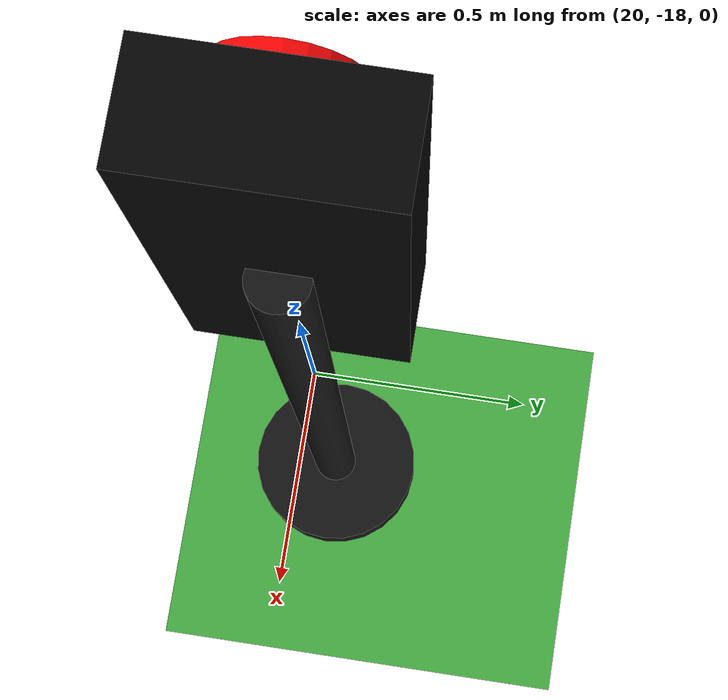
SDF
<sdf version="1.10">
 <world name="city_second">
  <model name="ground_plane">
   <static>true</static>
   <link name="link">
    <collision name="collision">
     <geometry><plane><normal>0 0 1</normal><size>300 300</size></plane></geometry>
    </collision>
    <visual name="visual">
     <geometry><plane><normal>0 0 1</normal><size>300 300</size></plane></geometry>
     <material>
      <ambient>0.280000001 0.689999998 0.25999999 1</ambient>
      <diffuse>0.280000001 0.689999998 0.25999999 1</diffuse>
      <specular>0.0299999993 0.0299999993 0.0299999993 1</specular>
     </material>
    </visual>
    <inertial>
     <mass>1</mass>
     <inertia><ixx>1</ixx><ixy>0</ixy><ixz>0</ixz><iyy>1</iyy><iyz>0</iyz><izz>1</izz></inertia>
    </inertial>
   </link>
  </model>
  <model name="simple_traffic_light_red_west_3">
   <static>true</static>
   <pose>20.210819927549061 -17.910705115010835 -6.9388939039072284e-18 0 0 1.5707999672671704</pose>
   <link name="base">
    <pose>0 0 0.040000000000000001 0 0 0</pose>
    <collision name="collision">
     <geometry>
      <cylinder><radius>0.17999999999999999</radius><length>0.080000000000000002</length></cylinder>
     </geometry>
    </collision>
    <visual name="visual">
     <geometry>
      <cylinder><radius>0.17999999999999999</radius><length>0.080000000000000002</length></cylinder>
     </geometry>
     <material>
      <ambient>0.0799999982 0.0799999982 0.0799999982 1</ambient>
      <diffuse>0.0799999982 0.0799999982 0.0799999982 1</diffuse>
      <specular>0.150000006 0.150000006 0.150000006 1</specular>
      <emissive>0 0 0 1</emissive>
     </material>
    </visual>
    <inertial>
     <mass>1</mass>
     <inertia><ixx>1</ixx><ixy>0</ixy><ixz>0</ixz><iyy>1</iyy><iyz>0</iyz><izz>1</izz></inertia>
    </inertial>
   </link>
   <link name="pole">
    <pose>0 0 0.80000000000000004 0 0 0</pose>
    <collision name="collision">
     <geometry>
      <cylinder><radius>0.044999999999999998</radius><length>1.6000000000000001</length></cylinder>
     </geometry>
    </collision>
    <visual name="visual">
     <geometry>
      <cylinder><radius>0.044999999999999998</radius><length>1.6000000000000001</length></cylinder>
     </geometry>
     <material>
      <ambient>0.0799999982 0.0799999982 0.0799999982 1</ambient>
      <diffuse>0.0799999982 0.0799999982 0.0799999982 1</diffuse>
      <specular>0.150000006 0.150000006 0.150000006 1</specular>
      <emissive>0 0 0 1</emissive>
     </material>
    </visual>
    <inertial>
     <mass>1</mass>
     <inertia><ixx>1</ixx><ixy>0</ixy><ixz>0</ixz><iyy>1</iyy><iyz>0</iyz><izz>1</izz></inertia>
    </inertial>
   </link>
   <link name="signal_box">
    <pose>-7.1054273576010019e-15 0.090000000000003411 1.5500000000000003 0 0 0</pose>
    <collision name="collision">
     <geometry><box><size>0.34000000000000002 0.16 0.71999999999999997</size></box></geometry>
    </collision>
    <visual name="visual">
     <geometry><box><size>0.34000000000000002 0.16 0.71999999999999997</size></box></geometry>
     <material>
      <ambient>0.0199999996 0.0199999996 0.0199999996 1</ambient>
      <diffuse>0.0199999996 0.0199999996 0.0199999996 1</diffuse>
      <specular>0.150000006 0.150000006 0.150000006 1</specular>
      <emissive>0 0 0 1</emissive>
     </material>
    </visual>
    <inertial>
     <mass>1</mass>
     <inertia><ixx>1</ixx><ixy>0</ixy><ixz>0</ixz><iyy>1</iyy><iyz>0</iyz><izz>1</izz></inertia>
    </inertial>
   </link>
   <link name="red_lens">
    <pose>0 0.18100000000000449 1.78 1.5707963267999998 8.0126081257495458e-28 -3.1401849173675498e-16</pose>
    <collision name="collision">
     <geometry><cylinder><radius>0.105</radius><length>0.035000000000000003</length></cylinder></geometry>
    </collision>
    <visual name="visual">
     <geometry><cylinder><radius>0.105</radius><length>0.035000000000000003</length></cylinder></geometry>
     <material>
      <ambient>1 0.0199999996 0.0199999996 1</ambient>
      <diffuse>1 0.0199999996 0.0199999996 1</diffuse>
      <specular>0.150000006 0.150000006 0.150000006 1</specular>
      <emissive>1 0.0199999996 0.0199999996 1</emissive>
     </material>
    </visual>
    <inertial>
     <mass>1</mass>
     <inertia><ixx>1</ixx><ixy>0</ixy><ixz>0</ixz><iyy>1</iyy><iyz>0</iyz><izz>1</izz></inertia>
    </inertial>
   </link>
   <link name="yellow_lens">
    <pose>-7.1054273576010019e-15 0.18200000000000216 1.5500000000000003 1.5707963267999998 8.0126081257495458e-28 -3.1401849173675498e-16</pose>
    <collision name="collision">
     <geometry>
      <cylinder><radius>0.095000000000000001</radius><length>0.035000000000000003</length></cylinder>
     </geometry>
    </collision>
    <visual name="visual">
     <geometry>
      <cylinder><radius>0.095000000000000001</radius><length>0.035000000000000003</length></cylinder>
     </geometry>
     <material>
      <ambient>0.119999997 0.100000001 0.0199999996 1</ambient>
      <diffuse>0.119999997 0.100000001 0.0199999996 1</diffuse>
      <specular>0.150000006 0.150000006 0.150000006 1</specular>
      <emissive>0 0 0 1</emissive>
     </material>
    </visual>
    <inertial>
     <mass>1</mass>
     <inertia><ixx>1</ixx><ixy>0</ixy><ixz>0</ixz><iyy>1</iyy><iyz>0</iyz><izz>1</izz></inertia>
    </inertial>
   </link>
   <link name="green_lens">
    <pose>0 0.18300000000000693 1.3199999999999998 1.5707963267999998 8.0126081257495458e-28 -3.1401849173675498e-16</pose>
    <collision name="collision">
     <geometry><cylinder><radius>0.105</radius><length>0.035000000000000003</length></cylinder></geometry>
    </collision>
    <visual name="visual">
     <geometry><cylinder><radius>0.105</radius><length>0.035000000000000003</length></cylinder></geometry>
     <material>
      <ambient>0.0799999982 0.0799999982 0.0799999982 1</ambient>
      <diffuse>0.0799999982 0.0799999982 0.0799999982 1</diffuse>
      <specular>0.150000006 0.150000006 0.150000006 1</specular>
      <emissive>0 0 0 1</emissive>
     </material>
    </visual>
    <inertial>
     <mass>1</mass>
     <inertia><ixx>1</ixx><ixy>0</ixy><ixz>0</ixz><iyy>1</iyy><iyz>0</iyz><izz>1</izz></inertia>
    </inertial>
   </link>
   <light name="red_glow" type="point">
    <pose>0 0.28 1.78 0 0 0</pose>
    <diffuse>1 0.02 0.02 1</diffuse>
    <specular>1 0.02 0.02 1</specular>
    <attenuation>
     <range>3.0</range>
     <constant>0.8</constant>
     <linear>0.15</linear>
     <quadratic>0.02</quadratic>
    </attenuation>
    <cast_shadows>false</cast_shadows>
   </light>
  </model>
 </world>
</sdf>
